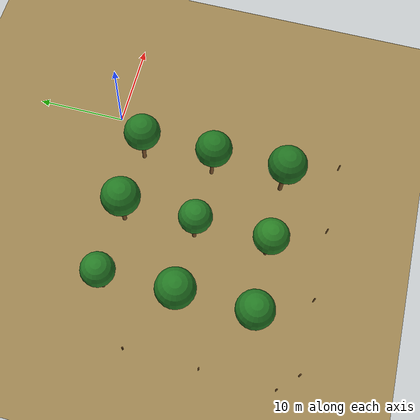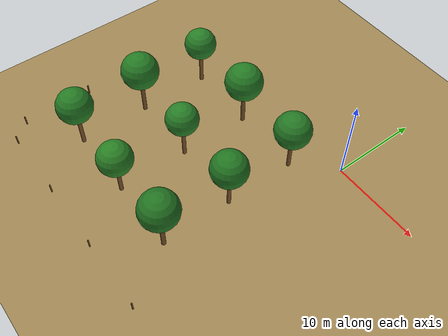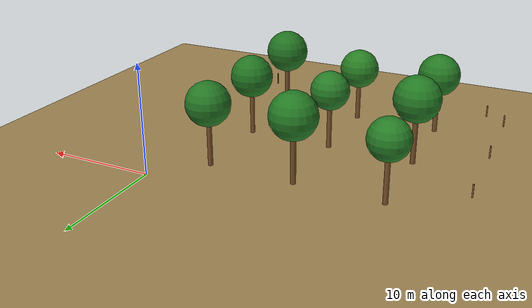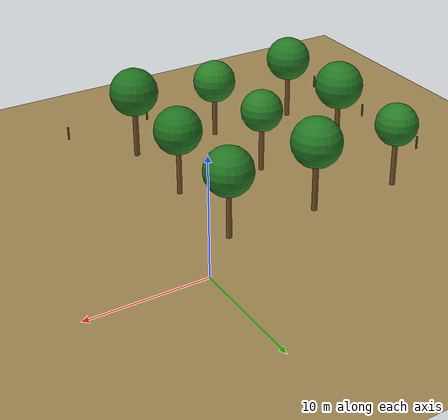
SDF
<sdf version="1.8">
 <world name="farm_world">
  <model name="ground_plane">
   <static>true</static>
   <link name="link">
    <collision name="collision">
     <geometry><plane><normal>0 0 1</normal><size>100 100</size></plane></geometry>
     <surface><friction><ode><mu>0.8</mu><mu2>0.8</mu2></ode></friction></surface>
    </collision>
    <visual name="visual">
     <geometry><plane><normal>0 0 1</normal><size>100 100</size></plane></geometry>
     <material>
      <ambient>0.55 0.45 0.28 1</ambient>
      <diffuse>0.62 0.52 0.32 1</diffuse>
      <specular>0.05 0.05 0.03 1</specular>
     </material>
    </visual>
   </link>
  </model>
  <model name="palm_r0_c0">
   <static>true</static>
   <pose>-20 -20 0 0 0 0</pose>
   <link name="link">
    <collision name="tc">
     <pose>0 0 2.4 0 0 0</pose>
     <geometry><cylinder><radius>0.22</radius><length>4.8</length></cylinder></geometry>
    </collision>
    <visual name="tv">
     <pose>0 0 2.4 0 0 0</pose>
     <geometry><cylinder><radius>0.22</radius><length>4.8</length></cylinder></geometry>
     <material><ambient>0.40 0.26 0.12 1</ambient><diffuse>0.48 0.32 0.16 1</diffuse></material>
    </visual>
    <visual name="cv">
     <pose>0 0 5.8 0 0 0</pose>
     <geometry><sphere><radius>2.0</radius></sphere></geometry>
     <material><ambient>0.10 0.38 0.10 1</ambient><diffuse>0.14 0.48 0.14 1</diffuse></material>
    </visual>
   </link>
  </model>
  <model name="palm_r0_c1">
   <static>true</static>
   <pose>-12 -20 0 0 0 0</pose>
   <link name="link">
    <collision name="tc">
     <pose>0 0 2.2 0 0 0</pose>
     <geometry><cylinder><radius>0.22</radius><length>4.4</length></cylinder></geometry>
    </collision>
    <visual name="tv">
     <pose>0 0 2.2 0 0 0</pose>
     <geometry><cylinder><radius>0.22</radius><length>4.4</length></cylinder></geometry>
     <material><ambient>0.40 0.26 0.12 1</ambient><diffuse>0.48 0.32 0.16 1</diffuse></material>
    </visual>
    <visual name="cv">
     <pose>0 0 5.3 0 0 0</pose>
     <geometry><sphere><radius>1.9</radius></sphere></geometry>
     <material><ambient>0.12 0.40 0.10 1</ambient><diffuse>0.16 0.50 0.14 1</diffuse></material>
    </visual>
   </link>
  </model>
  <model name="palm_r0_c2">
   <static>true</static>
   <pose>-4 -20 0 0 0 0</pose>
   <link name="link">
    <collision name="tc">
     <pose>0 0 2.5 0 0 0</pose>
     <geometry><cylinder><radius>0.24</radius><length>5.0</length></cylinder></geometry>
    </collision>
    <visual name="tv">
     <pose>0 0 2.5 0 0 0</pose>
     <geometry><cylinder><radius>0.24</radius><length>5.0</length></cylinder></geometry>
     <material><ambient>0.38 0.25 0.11 1</ambient><diffuse>0.46 0.31 0.15 1</diffuse></material>
    </visual>
    <visual name="cv">
     <pose>0 0 6.1 0 0 0</pose>
     <geometry><sphere><radius>2.1</radius></sphere></geometry>
     <material><ambient>0.10 0.36 0.10 1</ambient><diffuse>0.13 0.45 0.13 1</diffuse></material>
    </visual>
   </link>
  </model>
  <model name="palm_r1_c0">
   <static>true</static>
   <pose>-20 -12 0 0 0 0</pose>
   <link name="link">
    <collision name="tc">
     <pose>0 0 2.5 0 0 0</pose>
     <geometry><cylinder><radius>0.23</radius><length>5.0</length></cylinder></geometry>
    </collision>
    <visual name="tv">
     <pose>0 0 2.5 0 0 0</pose>
     <geometry><cylinder><radius>0.23</radius><length>5.0</length></cylinder></geometry>
     <material><ambient>0.38 0.25 0.11 1</ambient><diffuse>0.46 0.31 0.15 1</diffuse></material>
    </visual>
    <visual name="cv">
     <pose>0 0 6.1 0 0 0</pose>
     <geometry><sphere><radius>2.1</radius></sphere></geometry>
     <material><ambient>0.10 0.38 0.10 1</ambient><diffuse>0.14 0.48 0.14 1</diffuse></material>
    </visual>
   </link>
  </model>
  <model name="palm_r1_c1">
   <static>true</static>
   <pose>-12 -12 0 0 0 0</pose>
   <link name="link">
    <collision name="tc">
     <pose>0 0 2.3 0 0 0</pose>
     <geometry><cylinder><radius>0.22</radius><length>4.6</length></cylinder></geometry>
    </collision>
    <visual name="tv">
     <pose>0 0 2.3 0 0 0</pose>
     <geometry><cylinder><radius>0.22</radius><length>4.6</length></cylinder></geometry>
     <material><ambient>0.40 0.26 0.12 1</ambient><diffuse>0.48 0.32 0.16 1</diffuse></material>
    </visual>
    <visual name="cv">
     <pose>0 0 5.6 0 0 0</pose>
     <geometry><sphere><radius>1.8</radius></sphere></geometry>
     <material><ambient>0.11 0.39 0.11 1</ambient><diffuse>0.15 0.49 0.15 1</diffuse></material>
    </visual>
   </link>
  </model>
  <model name="palm_r1_c2">
   <static>true</static>
   <pose>-4 -12 0 0 0 0</pose>
   <link name="link">
    <collision name="tc">
     <pose>0 0 2.4 0 0 0</pose>
     <geometry><cylinder><radius>0.21</radius><length>4.8</length></cylinder></geometry>
    </collision>
    <visual name="tv">
     <pose>0 0 2.4 0 0 0</pose>
     <geometry><cylinder><radius>0.21</radius><length>4.8</length></cylinder></geometry>
     <material><ambient>0.40 0.26 0.12 1</ambient><diffuse>0.48 0.32 0.16 1</diffuse></material>
    </visual>
    <visual name="cv">
     <pose>0 0 5.8 0 0 0</pose>
     <geometry><sphere><radius>2.0</radius></sphere></geometry>
     <material><ambient>0.10 0.36 0.10 1</ambient><diffuse>0.13 0.46 0.13 1</diffuse></material>
    </visual>
   </link>
  </model>
  <model name="palm_r2_c0">
   <static>true</static>
   <pose>-20 -4 0 0 0 0</pose>
   <link name="link">
    <collision name="tc">
     <pose>0 0 2.3 0 0 0</pose>
     <geometry><cylinder><radius>0.22</radius><length>4.6</length></cylinder></geometry>
    </collision>
    <visual name="tv">
     <pose>0 0 2.3 0 0 0</pose>
     <geometry><cylinder><radius>0.22</radius><length>4.6</length></cylinder></geometry>
     <material><ambient>0.40 0.26 0.12 1</ambient><diffuse>0.48 0.32 0.16 1</diffuse></material>
    </visual>
    <visual name="cv">
     <pose>0 0 5.6 0 0 0</pose>
     <geometry><sphere><radius>1.8</radius></sphere></geometry>
     <material><ambient>0.11 0.39 0.11 1</ambient><diffuse>0.15 0.49 0.15 1</diffuse></material>
    </visual>
   </link>
  </model>
  <model name="palm_r2_c1">
   <static>true</static>
   <pose>-12 -4 0 0 0 0</pose>
   <link name="link">
    <collision name="tc">
     <pose>0 0 2.5 0 0 0</pose>
     <geometry><cylinder><radius>0.24</radius><length>5.0</length></cylinder></geometry>
    </collision>
    <visual name="tv">
     <pose>0 0 2.5 0 0 0</pose>
     <geometry><cylinder><radius>0.24</radius><length>5.0</length></cylinder></geometry>
     <material><ambient>0.38 0.25 0.11 1</ambient><diffuse>0.46 0.31 0.15 1</diffuse></material>
    </visual>
    <visual name="cv">
     <pose>0 0 6.1 0 0 0</pose>
     <geometry><sphere><radius>2.1</radius></sphere></geometry>
     <material><ambient>0.10 0.38 0.10 1</ambient><diffuse>0.14 0.48 0.14 1</diffuse></material>
    </visual>
   </link>
  </model>
  <model name="palm_r2_c2">
   <static>true</static>
   <pose>-4 -4 0 0 0 0</pose>
   <link name="link">
    <collision name="tc">
     <pose>0 0 2.4 0 0 0</pose>
     <geometry><cylinder><radius>0.22</radius><length>4.8</length></cylinder></geometry>
    </collision>
    <visual name="tv">
     <pose>0 0 2.4 0 0 0</pose>
     <geometry><cylinder><radius>0.22</radius><length>4.8</length></cylinder></geometry>
     <material><ambient>0.40 0.26 0.12 1</ambient><diffuse>0.48 0.32 0.16 1</diffuse></material>
    </visual>
    <visual name="cv">
     <pose>0 0 5.8 0 0 0</pose>
     <geometry><sphere><radius>2.0</radius></sphere></geometry>
     <material><ambient>0.10 0.37 0.10 1</ambient><diffuse>0.14 0.47 0.14 1</diffuse></material>
    </visual>
   </link>
  </model>
  <model name="fence_s_0">
   <static>true</static>
   <pose>-24 -26 0.6 0 0 0</pose>
   <link name="link">
    <collision name="c"><geometry><box><size>0.12 0.12 1.2</size></box></geometry></collision>
    <visual name="v">
     <geometry><box><size>0.12 0.12 1.2</size></box></geometry>
     <material><ambient>0.45 0.30 0.15 1</ambient><diffuse>0.52 0.36 0.18 1</diffuse></material>
    </visual>
   </link>
  </model>
  <model name="fence_s_1">
   <static>true</static>
   <pose>-16 -26 0.6 0 0 0</pose>
   <link name="link">
    <collision name="c"><geometry><box><size>0.12 0.12 1.2</size></box></geometry></collision>
    <visual name="v">
     <geometry><box><size>0.12 0.12 1.2</size></box></geometry>
     <material><ambient>0.45 0.30 0.15 1</ambient><diffuse>0.52 0.36 0.18 1</diffuse></material>
    </visual>
   </link>
  </model>
  <model name="fence_s_2">
   <static>true</static>
   <pose>-8  -26 0.6 0 0 0</pose>
   <link name="link">
    <collision name="c"><geometry><box><size>0.12 0.12 1.2</size></box></geometry></collision>
    <visual name="v">
     <geometry><box><size>0.12 0.12 1.2</size></box></geometry>
     <material><ambient>0.45 0.30 0.15 1</ambient><diffuse>0.52 0.36 0.18 1</diffuse></material>
    </visual>
   </link>
  </model>
  <model name="fence_s_3">
   <static>true</static>
   <pose>0   -26 0.6 0 0 0</pose>
   <link name="link">
    <collision name="c"><geometry><box><size>0.12 0.12 1.2</size></box></geometry></collision>
    <visual name="v">
     <geometry><box><size>0.12 0.12 1.2</size></box></geometry>
     <material><ambient>0.45 0.30 0.15 1</ambient><diffuse>0.52 0.36 0.18 1</diffuse></material>
    </visual>
   </link>
  </model>
  <model name="fence_w_0">
   <static>true</static>
   <pose>-26 -24 0.6 0 0 0</pose>
   <link name="link">
    <collision name="c"><geometry><box><size>0.12 0.12 1.2</size></box></geometry></collision>
    <visual name="v">
     <geometry><box><size>0.12 0.12 1.2</size></box></geometry>
     <material><ambient>0.45 0.30 0.15 1</ambient><diffuse>0.52 0.36 0.18 1</diffuse></material>
    </visual>
   </link>
  </model>
  <model name="fence_w_1">
   <static>true</static>
   <pose>-26 -16 0.6 0 0 0</pose>
   <link name="link">
    <collision name="c"><geometry><box><size>0.12 0.12 1.2</size></box></geometry></collision>
    <visual name="v">
     <geometry><box><size>0.12 0.12 1.2</size></box></geometry>
     <material><ambient>0.45 0.30 0.15 1</ambient><diffuse>0.52 0.36 0.18 1</diffuse></material>
    </visual>
   </link>
  </model>
  <model name="fence_w_2">
   <static>true</static>
   <pose>-26 -8  0.6 0 0 0</pose>
   <link name="link">
    <collision name="c"><geometry><box><size>0.12 0.12 1.2</size></box></geometry></collision>
    <visual name="v">
     <geometry><box><size>0.12 0.12 1.2</size></box></geometry>
     <material><ambient>0.45 0.30 0.15 1</ambient><diffuse>0.52 0.36 0.18 1</diffuse></material>
    </visual>
   </link>
  </model>
 </world>
</sdf>
